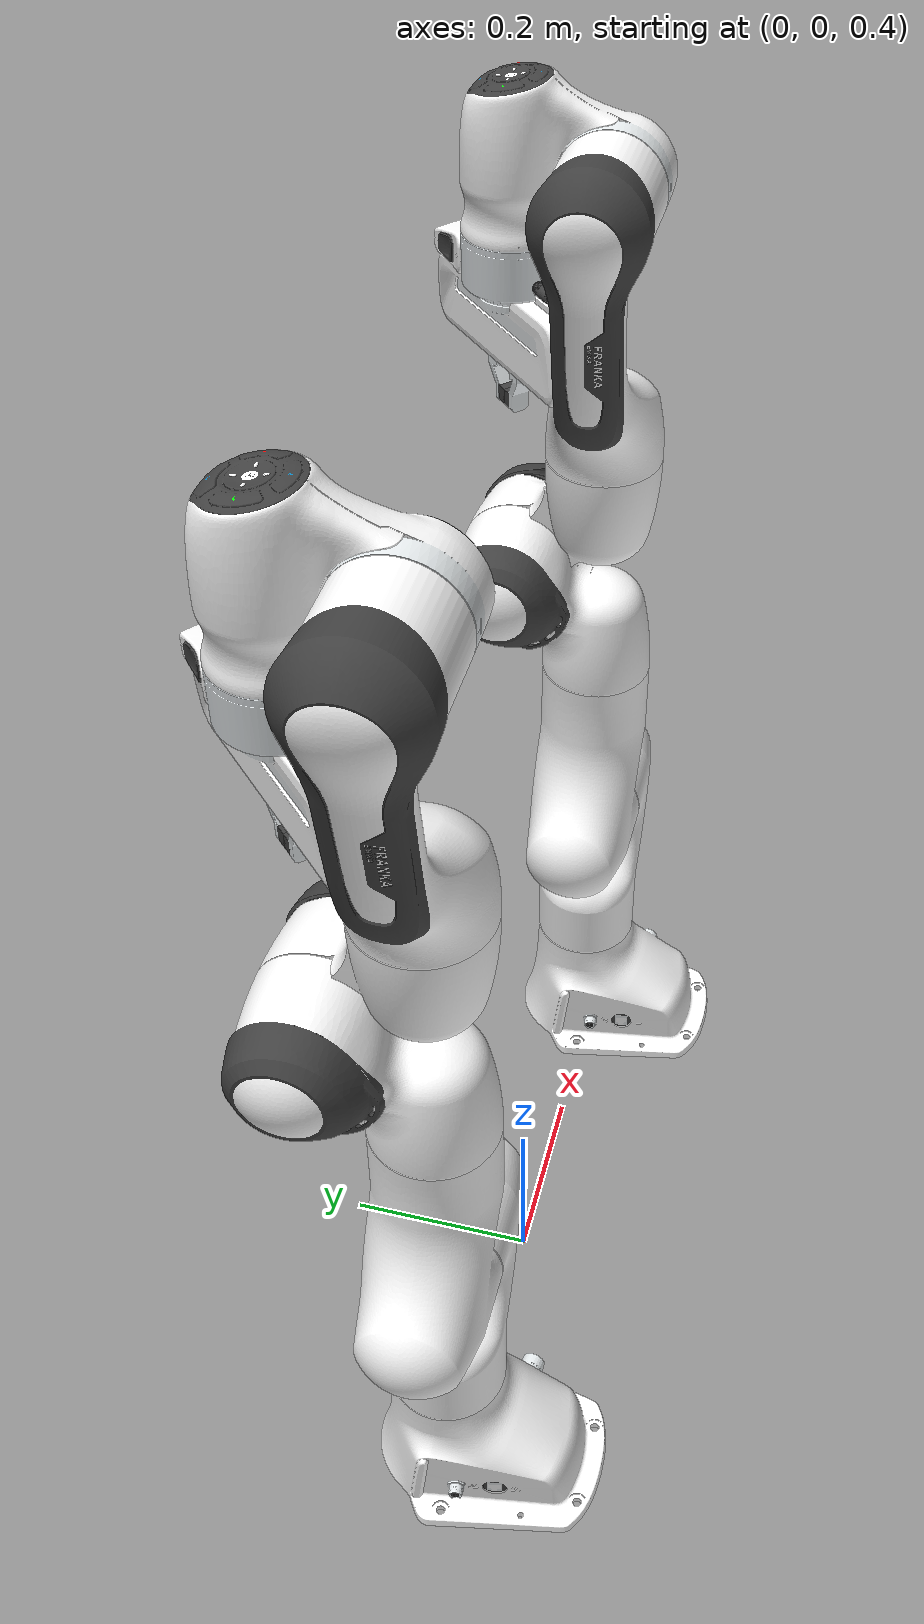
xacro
<?xml version="1.0"?>
<robot xmlns:xacro="http://www.ros.org/wiki/xacro" name="panda">

    <xacro:arg name="left_initial_positions_file"
            default="$(find dual_arm_panda_isaac_moveit_config)/config/left_initial_positions.yaml"/>
    <xacro:arg name="right_initial_positions_file"
            default="$(find dual_arm_panda_isaac_moveit_config)/config/right_initial_positions.yaml"/>
    <xacro:arg name="ros2_control_hardware_type" default="mock_components" />

    <!-- Root link -->
    <link name="world"/>

    <!-- Xacro imports -->
    <xacro:include filename="panda_arm_macro.xacro" />

    <!-- Left arm -->
    <xacro:panda_arm
        name="left_panda"
        prefix="left_"
        parent="world"
        initial_positions_file="$(arg left_initial_positions_file)"
        ros2_control_hardware_type="$(arg ros2_control_hardware_type)">
        <origin xyz="0.3 0 0.5" rpy="0 0 1.571" />
    </xacro:panda_arm>

    <!-- Right arm -->
    <xacro:panda_arm
        name="right_panda"
        prefix="right_"
        parent="world"
        initial_positions_file="$(arg right_initial_positions_file)"
        ros2_control_hardware_type="$(arg ros2_control_hardware_type)">
        <origin xyz="-0.3 0 0.5" rpy="0 0 1.571" />
    </xacro:panda_arm>

    <!-- Import panda ros2_control description -->

</robot>

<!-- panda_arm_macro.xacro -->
<robot xmlns:xacro="http://www.ros.org/wiki/xacro">

    <xacro:macro name="panda_arm" params="name prefix parent *origin initial_positions_file ros2_control_hardware_type" >

        <!-- ros2_control -->
        <xacro:include filename="$(find dual_arm_panda_isaac_moveit_config)/config/panda.ros2_control.xacro" />
        <xacro:panda_arm_ros2_control name="${name}" initial_positions_file="${initial_positions_file}" prefix="${prefix}"/>

        <xacro:include filename="panda_hand.ros2_control.xacro"/>
        <xacro:panda_hand_ros2_control name="${name}" prefix="${prefix}"/>

        <!-- base_joint fixes base_link to the environment -->
        <joint name="${prefix}base_joint" type="fixed">
            <xacro:insert_block name="origin" />
            <parent link="${parent}" />
            <child link="${prefix}panda_link0" />
        </joint>

        <link name="${prefix}panda_link0">
            <visual>
                <geometry>
                    <mesh filename="package://moveit_resources_panda_description/meshes/visual/link0.dae" />
                </geometry>
            </visual>
            <collision>
                <geometry>
                    <mesh filename="package://moveit_resources_panda_description/meshes/collision/link0.stl" />
                </geometry>
            </collision>
        </link>
        <link name="${prefix}panda_link1">
            <visual>
                <geometry>
                    <mesh filename="package://moveit_resources_panda_description/meshes/visual/link1.dae" />
                </geometry>
            </visual>
            <collision>
                <geometry>
                    <mesh filename="package://moveit_resources_panda_description/meshes/collision/link1.stl" />
                </geometry>
            </collision>
        </link>
        <joint name="${prefix}panda_joint1" type="revolute">
            <safety_controller k_position="100.0" k_velocity="40.0" soft_lower_limit="-2.8973" soft_upper_limit="2.8973" />
            <origin rpy="0 0 0" xyz="0 0 0.333" />
            <parent link="${prefix}panda_link0" />
            <child link="${prefix}panda_link1" />
            <axis xyz="0 0 1" />
            <limit effort="87" lower="-2.9671" upper="2.9671" velocity="2.3925" />
        </joint>
        <link name="${prefix}panda_link2">
            <visual>
                <geometry>
                    <mesh filename="package://moveit_resources_panda_description/meshes/visual/link2.dae" />
                </geometry>
            </visual>
            <collision>
                <geometry>
                    <mesh filename="package://moveit_resources_panda_description/meshes/collision/link2.stl" />
                </geometry>
            </collision>
        </link>
        <joint name="${prefix}panda_joint2" type="revolute">
            <safety_controller k_position="100.0" k_velocity="40.0" soft_lower_limit="-1.7628" soft_upper_limit="1.7628" />
            <origin rpy="-1.57079632679 0 0" xyz="0 0 0" />
            <parent link="${prefix}panda_link1" />
            <child link="${prefix}panda_link2" />
            <axis xyz="0 0 1" />
            <limit effort="87" lower="-1.8326" upper="1.8326" velocity="2.3925" />
        </joint>
        <link name="${prefix}panda_link3">
            <visual>
                <geometry>
                    <mesh filename="package://moveit_resources_panda_description/meshes/visual/link3.dae" />
                </geometry>
            </visual>
            <collision>
                <geometry>
                    <mesh filename="package://moveit_resources_panda_description/meshes/collision/link3.stl" />
                </geometry>
            </collision>
        </link>
        <joint name="${prefix}panda_joint3" type="revolute">
            <safety_controller k_position="100.0" k_velocity="40.0" soft_lower_limit="-2.8973" soft_upper_limit="2.8973" />
            <origin rpy="1.57079632679 0 0" xyz="0 -0.316 0" />
            <parent link="${prefix}panda_link2" />
            <child link="${prefix}panda_link3" />
            <axis xyz="0 0 1" />
            <limit effort="87" lower="-2.9671" upper="2.9671" velocity="2.3925" />
        </joint>
        <link name="${prefix}panda_link4">
            <visual>
                <geometry>
                    <mesh filename="package://moveit_resources_panda_description/meshes/visual/link4.dae" />
                </geometry>
            </visual>
            <collision>
                <geometry>
                    <mesh filename="package://moveit_resources_panda_description/meshes/collision/link4.stl" />
                </geometry>
            </collision>
        </link>
        <joint name="${prefix}panda_joint4" type="revolute">
            <safety_controller k_position="100.0" k_velocity="40.0" soft_lower_limit="-3.0718" soft_upper_limit="0.0175" />
            <origin rpy="1.57079632679 0 0" xyz="0.0825 0 0" />
            <parent link="${prefix}panda_link3" />
            <child link="${prefix}panda_link4" />
            <axis xyz="0 0 1" />
            <limit effort="87" lower="-3.1416" upper="0.0873" velocity="2.3925" />
        </joint>
        <link name="${prefix}panda_link5">
            <visual>
                <geometry>
                    <mesh filename="package://moveit_resources_panda_description/meshes/visual/link5.dae" />
                </geometry>
            </visual>
            <collision>
                <geometry>
                    <mesh filename="package://moveit_resources_panda_description/meshes/collision/link5.stl" />
                </geometry>
            </collision>
        </link>
        <joint name="${prefix}panda_joint5" type="revolute">
            <safety_controller k_position="100.0" k_velocity="40.0" soft_lower_limit="-2.8973" soft_upper_limit="2.8973" />
            <origin rpy="-1.57079632679 0 0" xyz="-0.0825 0.384 0" />
            <parent link="${prefix}panda_link4" />
            <child link="${prefix}panda_link5" />
            <axis xyz="0 0 1" />
            <limit effort="12" lower="-2.9671" upper="2.9671" velocity="2.8710" />
        </joint>
        <link name="${prefix}panda_link6">
            <visual>
                <geometry>
                    <mesh filename="package://moveit_resources_panda_description/meshes/visual/link6.dae" />
                </geometry>
            </visual>
            <collision>
                <geometry>
                    <mesh filename="package://moveit_resources_panda_description/meshes/collision/link6.stl" />
                </geometry>
            </collision>
        </link>
        <joint name="${prefix}panda_joint6" type="revolute">
            <safety_controller k_position="100.0" k_velocity="40.0" soft_lower_limit="-0.0175" soft_upper_limit="3.7525" />
            <origin rpy="1.57079632679 0 0" xyz="0 0 0" />
            <parent link="${prefix}panda_link5" />
            <child link="${prefix}panda_link6" />
            <axis xyz="0 0 1" />
            <limit effort="12" lower="-0.0873" upper="3.8223" velocity="2.8710" />
        </joint>
        <link name="${prefix}panda_link7">
            <visual>
                <geometry>
                    <mesh filename="package://moveit_resources_panda_description/meshes/visual/link7.dae" />
                </geometry>
            </visual>
            <collision>
                <geometry>
                    <mesh filename="package://moveit_resources_panda_description/meshes/collision/link7.stl" />
                </geometry>
            </collision>
        </link>
        <joint name="${prefix}panda_joint7" type="revolute">
            <safety_controller k_position="100.0" k_velocity="40.0" soft_lower_limit="-2.8973" soft_upper_limit="2.8973" />
            <origin rpy="1.57079632679 0 0" xyz="0.088 0 0" />
            <parent link="${prefix}panda_link6" />
            <child link="${prefix}panda_link7" />
            <axis xyz="0 0 1" />
            <limit effort="12" lower="-2.9671" upper="2.9671" velocity="2.8710" />
        </joint>
        <link name="${prefix}panda_link8" />
        <joint name="${prefix}panda_joint8" type="fixed">
            <origin rpy="0 0 0" xyz="0 0 0.107" />
            <parent link="${prefix}panda_link7" />
            <child link="${prefix}panda_link8" />
            <axis xyz="0 0 0" />
        </joint>
        <joint name="${prefix}panda_hand_joint" type="fixed">
            <parent link="${prefix}panda_link8" />
            <child link="${prefix}panda_hand" />
            <origin rpy="0 0 -0.785398163397" xyz="0 0 0" />
        </joint>
        <link name="${prefix}panda_hand">
            <visual>
                <geometry>
                    <mesh filename="package://moveit_resources_panda_description/meshes/visual/hand.dae" />
                </geometry>
            </visual>
            <collision>
                <geometry>
                    <mesh filename="package://moveit_resources_panda_description/meshes/collision/hand.stl" />
                </geometry>
            </collision>
        </link>
        <link name="${prefix}panda_leftfinger">
            <visual>
                <geometry>
                    <mesh filename="package://moveit_resources_panda_description/meshes/visual/finger.dae" />
                </geometry>
            </visual>
            <collision>
                <geometry>
                    <mesh filename="package://moveit_resources_panda_description/meshes/collision/finger.stl" />
                </geometry>
            </collision>
        </link>
        <link name="${prefix}panda_rightfinger">
            <visual>
                <origin rpy="0 0 3.14159265359" xyz="0 0 0" />
                <geometry>
                    <mesh filename="package://moveit_resources_panda_description/meshes/visual/finger.dae" />
                </geometry>
            </visual>
            <collision>
                <origin rpy="0 0 3.14159265359" xyz="0 0 0" />
                <geometry>
                    <mesh filename="package://moveit_resources_panda_description/meshes/collision/finger.stl" />
                </geometry>
            </collision>
        </link>
        <joint name="${prefix}panda_finger_joint1" type="prismatic">
            <parent link="${prefix}panda_hand" />
            <child link="${prefix}panda_leftfinger" />
            <origin rpy="0 0 0" xyz="0 0 0.0584" />
            <axis xyz="0 1 0" />
            <limit effort="20" lower="0.0" upper="0.04" velocity="0.2" />
        </joint>
        <joint name="${prefix}panda_finger_joint2" type="prismatic">
            <parent link="${prefix}panda_hand" />
            <child link="${prefix}panda_rightfinger" />
            <origin rpy="0 0 0" xyz="0 0 0.0584" />
            <axis xyz="0 -1 0" />
            <limit effort="20" lower="0.0" upper="0.04" velocity="0.2" />
            <mimic joint="${prefix}panda_finger_joint1" />
        </joint>
    </xacro:macro>
</robot>
